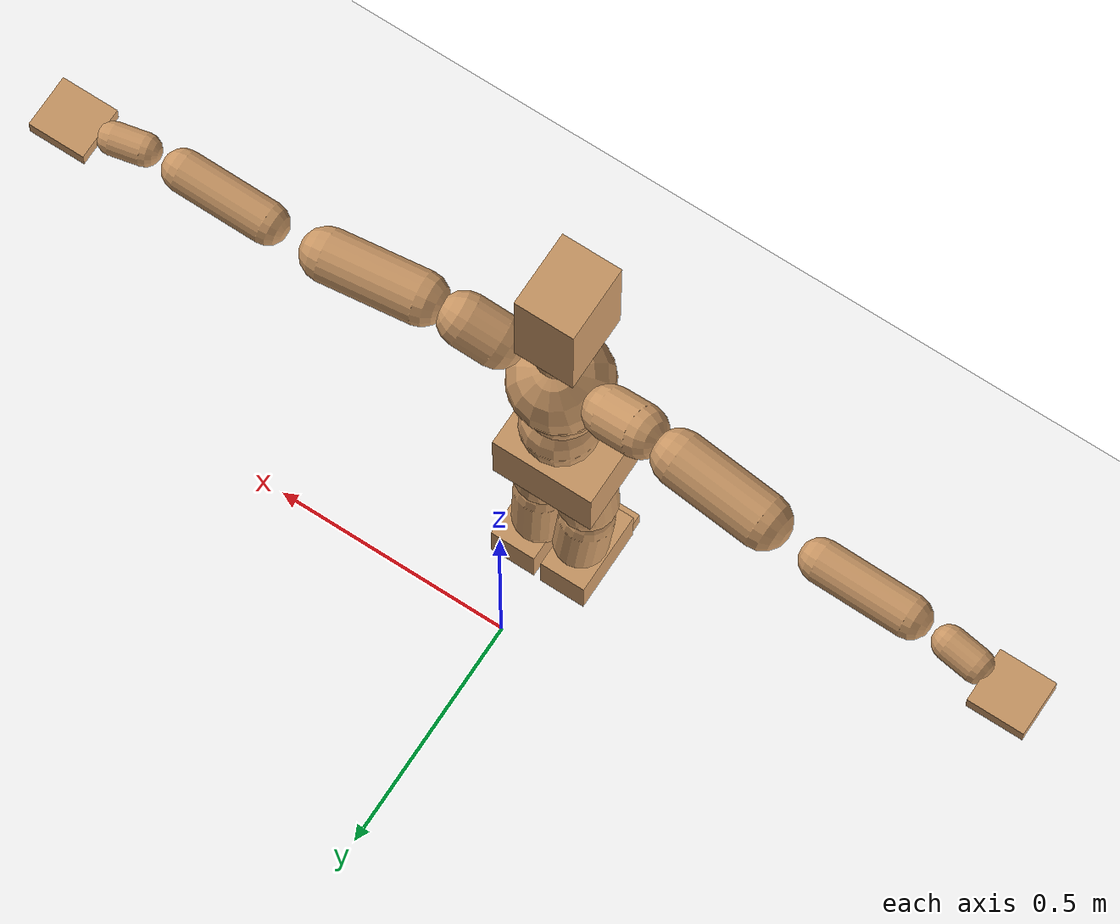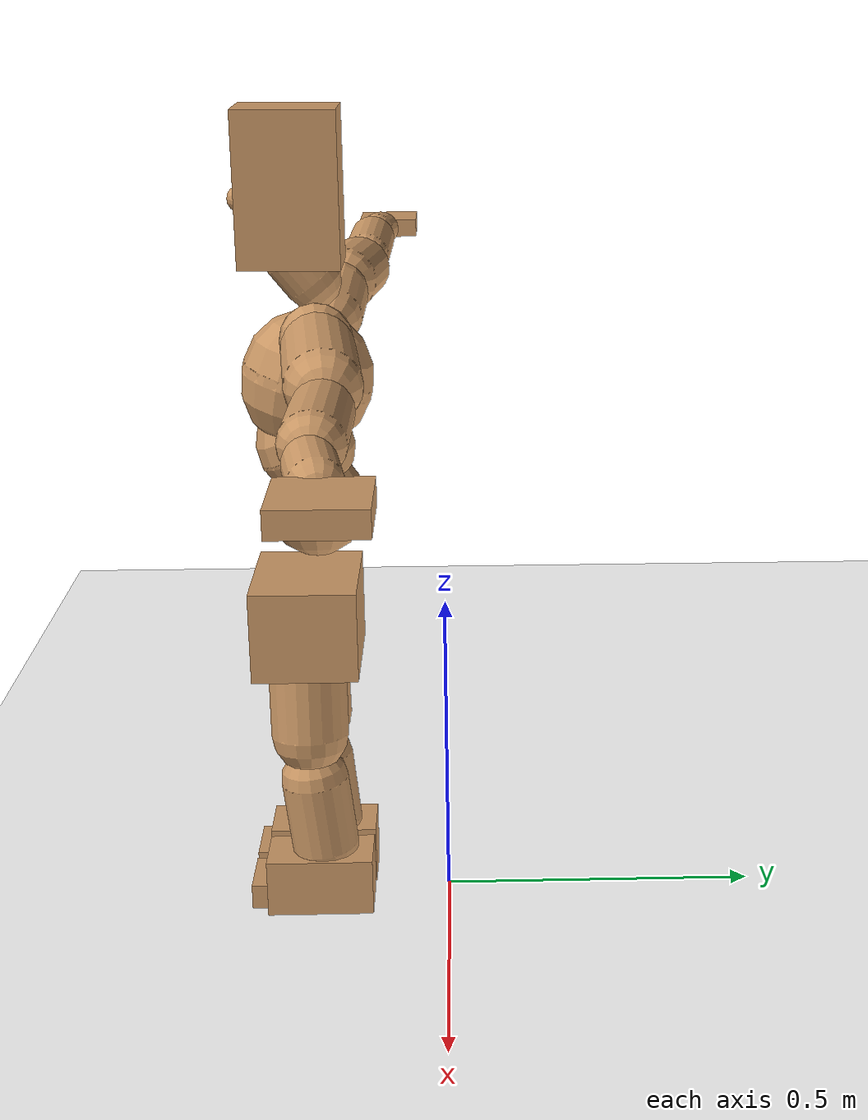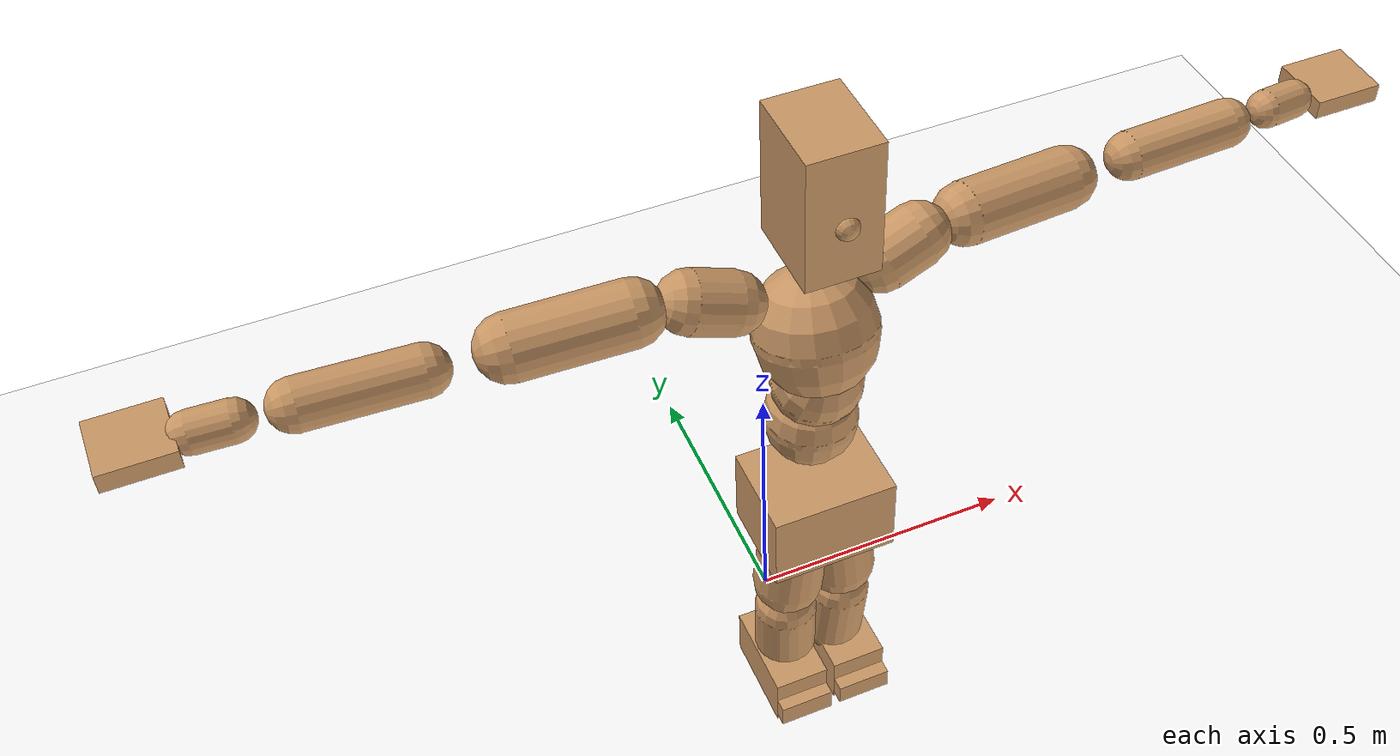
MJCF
<mujoco model="humanoid">
  <option integrator="implicitfast" />

  <visual>
    <global offwidth="1280" offheight="960" />
    <headlight active="1" ambient="0.34 0.34 0.34" diffuse="0.5 0.5 0.5" />
  </visual>

  <default>
    <joint damping="2" stiffness="2" armature="0.01" limited="true" solimplimit="0 .99 .01" />
    <geom condim="1" friction="0.7 0.005 0.0001" solimp=".99 .99 .003" solref="0.015 1" margin="0.001" rgba="0.8 0.6 .4 1" />
    <default class="smplcontact">
      <geom condim="3" friction="1. 0.005 0.0001" solref="0.015 1" solimp="0.98 0.98 0.001" priority="1" />
    </default>
    <default class="stiff_medium">
      <joint stiffness="10" />
    </default>
    <default class="stiff_medium_higher">
      <joint stiffness="50" />
    </default>
    <default class="stiff_high">
      <joint stiffness="100" />
    </default>
  </default>

  <asset>
    <texture type="skybox" builtin="gradient" rgb1="0.99 0.99 0.99" rgb2="0.608 0.828 0.892" width="100" />
    <texture builtin="flat" height="1278" mark="cross" markrgb="1 1 1" name="texgeom" random="0.01" rgb1="0.8 0.6 0.4" rgb2="0.8 0.6 0.4" type="cube" width="127" />
    <texture name="texplane" type="2d" builtin="checker" markrgb="1 1 1" rgb1="0.756 0.772 0.76" rgb2="0.6 0.6 0.6" width="100" height="100" />
    <material name="MatPlane" reflectance="0.5" texture="texplane" texrepeat="1 1" texuniform="true" />
    <material name="geom" texture="texgeom" texuniform="true" />
  </asset>

  <worldbody>
    <light name="tracking_light" pos="0 0 7" dir="0 0 -1" directional="true" cutoff="100" exponent="1" diffuse="1 1 1" specular="0.1 0.1 0.1" mode="trackcom" />
    <camera name="back" pos="0 3 2.4" xyaxes="-1 0 0 0 -1 2" mode="trackcom" />
    <camera name="side" pos="-3 0 2.4" xyaxes="0 -1 0 1 0 2" mode="trackcom" />
    <camera name="front_side" pos="-2.8 -2.8 0.8" xyaxes="0.5 -0.5 0 0.1 0.1 1" mode="trackcom" />
    <geom condim="3" name="floor" pos="0 0 0" rgba="1 1 1 1" size="100 100 .2" type="plane" material="MatPlane" />
    <body name="Pelvis" pos="-0.0018 -0.2233 0.49225" euler="90 0 0">
      <site name="Pelvis" size="0.01" />
      <freejoint name="Pelvis" />
      <geom type="box" pos="-0.0000 -0.0121 -0.0055" size="0.1069 0.0722 0.083" quat="1.0000 0.0000 0.0000 0.0000" density="3165.830099" name="Pelvis" />
      <body name="L_Hip" pos="0.03475 -0.0457 -0.0034">
        <joint name="L_Hip_x" type="hinge" pos="0 0 0" axis="1 0 0" stiffness="3.3281267346938783" range="-160.0 22.92" class="stiff_medium" damping="3.7390012674465325" armature="0.0018669335091027717"/>
        <joint name="L_Hip_y" type="hinge" pos="0 0 0" axis="0 1 0" stiffness="3.37791" range="-70.0 70.0" class="stiff_medium" damping="4.005630916019097" armature="0.004750001934737156"/>
        <joint name="L_Hip_z" type="hinge" pos="0 0 0" axis="0 0 1" stiffness="3.3736477551020405" range="-28.65 90.0" class="stiff_medium" damping="2.5063841398267126" armature="0.0018620679787552047"/>
        <geom type="capsule" density="2040.816327" fromto="0.00345 -0.0375 -0.00045 0.0137 -0.1501 -0.0018" size="0.0615" name="L_Hip" />
        <body name="L_Knee" pos="0.01715 -0.1876 -0.00225">
          <joint name="L_Knee_x" type="hinge" pos="0 0 0" axis="1 0 0" range="-5.16 171.89" damping="2.234113816312467" armature="0.002158215061835119" stiffness="0.7227130408163265"/>
          <joint name="L_Knee_y" type="hinge" pos="0 0 0" axis="0 1 0" range="-4.58 6.88" damping="3.4591258985845013" armature="0.005422024016158549" stiffness="0.6896382205818496"/>
          <joint name="L_Knee_z" type="hinge" pos="0 0 0" axis="0 0 1" range="-6.88 4.58" damping="2.2483389527020092" armature="0.0021311895651193293" stiffness="0.7412274770408163"/>
          <geom type="capsule" density="1234.567901" fromto="-0.00135 -0.0398 -0.00435 -0.00545 -0.1592 -0.0175" size="0.0541" name="L_Knee" />
          <body name="L_Ankle" pos="-0.0068 -0.199 -0.02185">
            <joint name="L_Ankle_x" type="hinge" pos="0 0 0" axis="1 0 0" range="-45.84 45.84" class="stiff_medium" damping="3.02004322854506" armature="0.005067033945711594" stiffness="5.0"/>
            <joint name="L_Ankle_y" type="hinge" pos="0 0 0" axis="0 1 0" range="-74.48 22.92" class="stiff_medium" damping="1.5371232923821347" armature="0.005250551146630429" stiffness="5.0"/>
            <joint name="L_Ankle_z" type="hinge" pos="0 0 0" axis="0 0 1" range="-4.58 4.58" class="stiff_medium" damping="3.407863702828065" armature="0.006451963898362782" stiffness="5.0"/>
            <geom type="box" pos="0.01165 -0.01195 0.0121" size="0.0483 0.0464 0.085" quat="1.0000 0.0000 0.0000 0.0000" density="449.071558" name="L_Ankle" class="smplcontact" />
            <body name="L_Toe" pos="0.0132 -0.0279 0.05965">
              <joint name="L_Toe_x" type="hinge" pos="0 0 0" axis="1 0 0" range="-91.67 22.92" armature="0.007148590664291528" damping="1.195708213929429" stiffness="1.0"/>
              <joint name="L_Toe_y" type="hinge" pos="0 0 0" axis="0 1 0" range="-4.58 4.58" armature="0.007990951927082678" damping="1.2641955487251706" stiffness="1.0"/>
              <joint name="L_Toe_z" type="hinge" pos="0 0 0" axis="0 0 1" range="-4.58 4.58" armature="0.009694161060559632" damping="1.392419553192186" stiffness="1.0"/>
              <geom type="box" pos="-0.0015 0.00275 0.0124" size="0.0478 0.02 0.0496" quat="1.0000 0.0000 0.0000 0.0000" density="423.206892" name="L_Toe" class="smplcontact" />
            </body>
          </body>
        </body>
      </body>
      <body name="R_Hip" pos="-0.03385 -0.04525 -0.00215">
        <joint name="R_Hip_x" type="hinge" pos="0 0 0" axis="1 0 0" stiffness="3.3281267346938783" range="-160.0 22.92" class="stiff_medium" damping="3.7390012674465325" armature="0.0018669335091027717"/>
        <joint name="R_Hip_y" type="hinge" pos="0 0 0" axis="0 1 0" stiffness="3.37791" range="-70.0 70.0" class="stiff_medium" damping="4.005630916019097" armature="0.004750001934737156"/>
        <joint name="R_Hip_z" type="hinge" pos="0 0 0" axis="0 0 1" stiffness="3.3736477551020405" range="-90.0 28.65" class="stiff_medium" damping="2.5063841398267126" armature="0.0018620679787552047"/>
        <geom type="capsule" density="2040.816327" fromto="-0.00385 -0.03825 -0.0009 -0.0153 -0.15305 -0.00355" size="0.0606" name="R_Hip" />
        <body name="R_Knee" pos="-0.01915 -0.1913 -0.00445">
          <joint name="R_Knee_x" type="hinge" pos="0 0 0" axis="1 0 0" range="-5.16 171.89" damping="2.234113816312467" armature="0.002158215061835119" stiffness="0.7227130408163265"/>
          <joint name="R_Knee_y" type="hinge" pos="0 0 0" axis="0 1 0" range="-6.88 4.58" damping="3.4591258985845013" armature="0.005422024016158549" stiffness="0.6896382205818496"/>
          <joint name="R_Knee_z" type="hinge" pos="0 0 0" axis="0 0 1" range="-4.58 6.88" damping="2.2483389527020092" armature="0.0021311895651193293" stiffness="0.7412274770408163"/>
          <geom type="capsule" density="1234.567901" fromto="0.0016 -0.03985 -0.00425 0.0063 -0.15935 -0.0169" size="0.0541" name="R_Knee" />
          <body name="R_Ankle" pos="0.0079 -0.1992 -0.02115">
            <joint name="R_Ankle_x" type="hinge" pos="0 0 0" axis="1 0 0" range="-45.84 45.84" class="stiff_medium" damping="3.02004322854506" armature="0.005067033945711594" stiffness="5.0"/>
            <joint name="R_Ankle_y" type="hinge" pos="0 0 0" axis="0 1 0" range="-22.92 74.48" class="stiff_medium" damping="1.5371232923821347" armature="0.005250551146630429" stiffness="5.0"/>
            <joint name="R_Ankle_z" type="hinge" pos="0 0 0" axis="0 0 1" range="-4.58 4.58" class="stiff_medium" damping="3.407863702828065" armature="0.006451963898362782" stiffness="5.0"/>
            <geom type="box" pos="-0.0106 -0.0087 0.0128" size="0.0483 0.0478 0.0865" quat="1.0000 0.0000 0.0000 0.0000" density="434.700981" name="R_Ankle" class="smplcontact" />
            <body name="R_Toe" pos="-0.0127 -0.02405 0.06165">
              <joint name="R_Toe_x" type="hinge" pos="0 0 0" axis="1 0 0" range="-91.67 22.92" armature="0.007148590664291528" damping="1.195708213929429" stiffness="1.0"/>
              <joint name="R_Toe_y" type="hinge" pos="0 0 0" axis="0 1 0" range="-4.58 4.58" armature="0.007990951927082678" damping="1.2641955487251706" stiffness="1.0"/>
              <joint name="R_Toe_z" type="hinge" pos="0 0 0" axis="0 0 1" range="-4.58 4.58" armature="0.009694161060559632" damping="1.392419553192186" stiffness="1.0"/>
              <geom type="box" pos="0.0021 0.00225 0.01135" size="0.0479 0.0216 0.0493" quat="1.0000 0.0000 0.0000 0.0000" density="407.384095" name="R_Toe" class="smplcontact" />
            </body>
          </body>
        </body>
      </body>
      <body name="Torso" pos="-0.0025 0.109 -0.0267">
        <joint name="Torso_x" type="hinge" pos="0 0 0" axis="1 0 0" range="-25.78 57.3" class="stiff_medium" damping="16.249002662379564" armature="0.011000822944888132" stiffness="10.667084285714289"/>
        <joint name="Torso_y" type="hinge" pos="0 0 0" axis="0 1 0" range="-57.3 57.3" class="stiff_high" damping="25.827862257678852" armature="0.015782642166796146" stiffness="105.6664755102041"/>
        <joint name="Torso_z" type="hinge" pos="0 0 0" axis="0 0 1" range="-34.38 34.38" class="stiff_high" damping="22.959426849090946" armature="0.012628565201764919" stiffness="104.35375531914897"/>
        <geom type="capsule" density="2040.816327" fromto="0.0025 0.0608 0.0005 0.003 0.0743 0.0006" size="0.0769" name="Torso" />
        <body name="Spine" pos="0.0055 0.1352 0.0011">
          <joint name="Spine_x" type="hinge" pos="0 0 0" axis="1 0 0" stiffness="10.801640204081632" range="-25.78 57.3" class="stiff_medium" damping="16.52949868968123" armature="0.011242092117287062"/>
          <joint name="Spine_y" type="hinge" pos="0 0 0" axis="0 1 0" stiffness="10.993194042553192" range="-57.3 57.3" class="stiff_high" damping="10.550939846165113" armature="0.015822621024438047"/>
          <joint name="Spine_z" type="hinge" pos="0 0 0" axis="0 0 1" stiffness="21.950184081632656" range="-34.38 34.38" class="stiff_high" damping="14.755254913518769" armature="0.01377598846559587"/>
          <geom type="capsule" density="2040.816327" fromto="0.0007 0.0238 0.0114 0.0008 0.0291 0.014" size="0.0755" name="Spine" />
          <body name="Chest" pos="0.0015 0.0529 0.0254">
            <joint name="Chest_x" type="hinge" pos="0 0 0" axis="1 0 0" stiffness="11.160686250000001" range="-25.78 57.3" class="stiff_medium" damping="16.913025635620166" armature="0.01139119264985042"/>
            <joint name="Chest_y" type="hinge" pos="0 0 0" axis="0 1 0" stiffness="12.279827826086954" range="-57.3 57.3" class="stiff_high" damping="11.153527766970866" armature="0.015828955346832537"/>
            <joint name="Chest_z" type="hinge" pos="0 0 0" axis="0 0 1" stiffness="22.066057083333334" range="-34.38 34.38" class="stiff_high" damping="15.064016907343918" armature="0.014283161773945492"/>
            <geom type="capsule" density="2040.816327" fromto="-0.0009 0.0682 -0.0173 -0.001 0.0833 -0.0212" size="0.1002" name="Chest" />
            <body name="Neck" pos="-0.0028 0.2139 -0.0429">
              <joint name="Neck_x" type="hinge" pos="0 0 0" axis="1 0 0" range="-28.65 57.3" class="stiff_medium_higher" damping="10.0" armature="0.010000000000000002" stiffness="50.0"/>
              <joint name="Neck_y" type="hinge" pos="0 0 0" axis="0 1 0" range="-40.11 40.11" class="stiff_medium_higher" damping="10.0" armature="0.01" stiffness="50.0"/>
              <joint name="Neck_z" type="hinge" pos="0 0 0" axis="0 0 1" range="-40.11 40.11" class="stiff_medium_higher" damping="9.999999999999998" armature="0.009999999999999998" stiffness="50.0"/>
              <geom type="capsule" density="1000" fromto="0.001 0.013 0.0103 0.0041 0.052 0.0411" size="0.0436" name="Neck" />
              <body name="Head" pos="0.0052 0.065 0.0513">
                <joint name="Head_x" type="hinge" pos="0 0 0" axis="1 0 0" range="-28.65 57.3" class="stiff_medium_higher" damping="2.000000000000001" armature="0.010000000000000009" stiffness="50.0"/>
                <joint name="Head_y" type="hinge" pos="0 0 0" axis="0 1 0" range="-40.11 40.11" class="stiff_medium_higher" damping="2.0" armature="0.010000000000000002" stiffness="50.0"/>
                <joint name="Head_z" type="hinge" pos="0 0 0" axis="0 0 1" range="-40.11 40.11" class="stiff_medium_higher" damping="2.0000000000000004" armature="0.010000000000000007" stiffness="50.0"/>
                <geom type="box" pos="-0.0042 0.0876 -0.0116" size="0.0606 0.1154 0.076" quat="1.0000 0.0000 0.0000 0.0000" density="1018.069894" name="Head" />
                <geom type="capsule" name="nose" size="0.02 0.01" pos="0 0.07 0.05" quat="1 0 0 0" mass="0" contype="0" conaffinity="0" />
              </body>
            </body>
            <body name="L_Thorax" pos="0.09456 0.14604 -0.04092">
              <joint name="L_Thorax_x" type="hinge" pos="0 0 0" axis="1 0 0" range="-10.89 4.58" class="stiff_medium_higher" damping="27.342828037145544" armature="0.013883161405287541" stiffness="67.31448112244898"/>
              <joint name="L_Thorax_y" type="hinge" pos="0 0 0" axis="0 1 0" range="-28.65 17.19" class="stiff_medium_higher" damping="29.39539222803986" armature="0.015973211475722778" stiffness="67.620175"/>
              <joint name="L_Thorax_z" type="hinge" pos="0 0 0" axis="0 0 1" range="-31.51 40.11" class="stiff_medium_higher" damping="29.396409527404238" armature="0.015975115138279122" stiffness="67.61679693877551"/>
              <geom type="capsule" density="1000" fromto="0.02184 0.00732 -0.00216 0.08736 0.02928 -0.00852" size="0.0521" name="L_Thorax" />
              <body name="L_Shoulder" pos="0.1092 0.0366 -0.01068">
                <joint name="L_Shoulder_x" type="hinge" pos="0 0 0" axis="1 0 0" range="-97.4 97.4" class="stiff_medium" damping="7.934224871342847" armature="0.013032307273704663" stiffness="13.417919999999999"/>
                <joint name="L_Shoulder_y" type="hinge" pos="0 0 0" axis="0 1 0" range="-108.86 80.21" class="stiff_medium" damping="8.787023272078152" armature="0.015885669306109254" stiffness="13.501298367346937"/>
                <joint name="L_Shoulder_z" type="hinge" pos="0 0 0" axis="0 0 1" range="-97.4 85.94" class="stiff_medium" damping="8.786069504764413" armature="0.015888008764521212" stiffness="13.496380000000002"/>
                <geom type="capsule" density="1000" fromto="0.06228 -0.00312 -0.0066 0.24924 -0.01224 -0.0264" size="0.0517" name="L_Shoulder" />
                <body name="L_Elbow" pos="0.31152 -0.01536 -0.033">
                  <joint name="L_Elbow_x" type="hinge" pos="0 0 0" axis="1 0 0" range="-17.19 4.58" damping="6.232456205291436" armature="0.01173152521758845" stiffness="2.6488293469387756"/>
                  <joint name="L_Elbow_y" type="hinge" pos="0 0 0" axis="0 1 0" range="-180.0 17.19" damping="7.156106367972157" armature="0.015461775606096708" stiffness="2.649623673469388"/>
                  <joint name="L_Elbow_z" type="hinge" pos="0 0 0" axis="0 0 1" range="-100.84 4.58" damping="7.157115854883422" armature="0.015474031127394204" stiffness="2.648272163265306"/>
                  <geom type="capsule" density="1000" fromto="0.05976 0.00216 -0.00024 0.23928 0.00864 -0.00108" size="0.0405" name="L_Elbow" />
                  <body name="L_Wrist" pos="0.29904 0.0108 -0.00144">
                    <joint name="L_Wrist_x" type="hinge" pos="0 0 0" axis="1 0 0" range="-180.0 22.92" armature="0.011470487256353419" damping="2.3885555565203327" stiffness="2.4869029183673472"/>
                    <joint name="L_Wrist_y" type="hinge" pos="0 0 0" axis="0 1 0" range="-17.19 17.19" armature="0.014137841032973879" damping="2.6585613747278862" stiffness="2.4996562653061227"/>
                    <joint name="L_Wrist_z" type="hinge" pos="0 0 0" axis="0 0 1" range="-22.92 22.92" armature="0.014283798741946246" damping="2.6694984653462823" stiffness="2.4945122040816328"/>
                    <geom type="capsule" density="1000" fromto="0.02016 -0.00192 -0.0036 0.08064 -0.0078 -0.0144" size="0.0318" name="L_Wrist" class="smplcontact" />
                    <body name="L_Hand" pos="0.1008 -0.00984 -0.01788">
                      <joint name="L_Hand_x" type="hinge" pos="0 0 0" axis="1 0 0" range="-17.19 17.19" armature="0.010191691106290342" damping="2.2117892600831945" stiffness="2.4000000000000004"/>
                      <joint name="L_Hand_y" type="hinge" pos="0 0 0" axis="0 1 0" range="-51.57 51.57" armature="0.01231823946428861" damping="2.431615706245239" stiffness="2.4000000000000004"/>
                      <joint name="L_Hand_z" type="hinge" pos="0 0 0" axis="0 0 1" range="-91.67 91.67" armature="0.012885099984316237" damping="2.486935462064063" stiffness="2.4000000000000004"/>
                      <geom type="box" pos="0.05916 0.0012 -0.00696" size="0.0585 0.0158 0.0538" quat="1.0000 0.0000 0.0000 0.0000" density="400.552564" name="L_Hand" class="smplcontact" />
                    </body>
                  </body>
                </body>
              </body>
            </body>
            <body name="R_Thorax" pos="-0.09816 0.14256 -0.04632">
              <joint name="R_Thorax_x" type="hinge" pos="0 0 0" axis="1 0 0" range="-10.89 4.58" class="stiff_medium_higher" damping="27.342828037145544" armature="0.013883161405287541" stiffness="67.31448112244898"/>
              <joint name="R_Thorax_y" type="hinge" pos="0 0 0" axis="0 1 0" range="-17.19 28.65" class="stiff_medium_higher" damping="29.39539222803986" armature="0.015973211475722778" stiffness="67.620175"/>
              <joint name="R_Thorax_z" type="hinge" pos="0 0 0" axis="0 0 1" range="-40.11 31.51" class="stiff_medium_higher" damping="29.396409527404238" armature="0.015975115138279122" stiffness="67.61679693877551"/>
              <geom type="capsule" density="1000" fromto="-0.02304 0.0078 -0.00216 -0.09216 0.0312 -0.00876" size="0.0511" name="R_Thorax" />
              <body name="R_Shoulder" pos="-0.1152 0.03912 -0.01092">
                <joint name="R_Shoulder_x" type="hinge" pos="0 0 0" axis="1 0 0" range="-97.4 97.4" class="stiff_medium" damping="7.934224871342847" armature="0.013032307273704663" stiffness="13.417919999999999"/>
                <joint name="R_Shoulder_y" type="hinge" pos="0 0 0" axis="0 1 0" range="-80.21 108.86" class="stiff_medium" damping="8.787023272078152" armature="0.015885669306109254" stiffness="13.501298367346937"/>
                <joint name="R_Shoulder_z" type="hinge" pos="0 0 0" axis="0 0 1" range="-85.94 97.4" class="stiff_medium" damping="8.786069504764413" armature="0.015888008764521212" stiffness="13.496380000000002"/>
                <geom type="capsule" density="1000" fromto="-0.06084 -0.00324 -0.00516 -0.2436 -0.01284 -0.02052" size="0.0531" name="R_Shoulder" />
                <body name="R_Elbow" pos="-0.30444 -0.01596 -0.02568">
                  <joint name="R_Elbow_x" type="hinge" pos="0 0 0" axis="1 0 0" range="-17.19 4.58" damping="6.232456205291436" armature="0.01173152521758845" stiffness="2.6488293469387756"/>
                  <joint name="R_Elbow_y" type="hinge" pos="0 0 0" axis="0 1 0" range="-17.19 180.0" damping="7.156106367972157" armature="0.015461775606096708" stiffness="2.649623673469388"/>
                  <joint name="R_Elbow_z" type="hinge" pos="0 0 0" axis="0 0 1" range="-4.58 100.84" damping="7.157115854883422" armature="0.015474031127394204" stiffness="2.648272163265306"/>
                  <geom type="capsule" density="1000" fromto="-0.06132 0.00192 -0.00132 -0.24504 0.00744 -0.00528" size="0.0408" name="R_Elbow" />
                  <body name="R_Wrist" pos="-0.30636 0.00936 -0.00672">
                    <joint name="R_Wrist_x" type="hinge" pos="0 0 0" axis="1 0 0" range="-180.0 22.92" armature="0.011470487256353419" damping="2.3885555565203327" stiffness="2.4869029183673472"/>
                    <joint name="R_Wrist_y" type="hinge" pos="0 0 0" axis="0 1 0" range="-17.19 17.19" armature="0.014137841032973879" damping="2.6585613747278862" stiffness="2.4996562653061227"/>
                    <joint name="R_Wrist_z" type="hinge" pos="0 0 0" axis="0 0 1" range="-22.92 22.92" armature="0.014283798741946246" damping="2.6694984653462823" stiffness="2.4945122040816328"/>
                    <geom type="capsule" density="1000" fromto="-0.02028 -0.00144 -0.00252 -0.08124 -0.00588 -0.00996" size="0.0326" name="R_Wrist" class="smplcontact" />
                    <body name="R_Hand" pos="-0.10152 -0.00732 -0.01236">
                      <joint name="R_Hand_x" type="hinge" pos="0 0 0" axis="1 0 0" range="-17.19 17.19" armature="0.010191691106290342" damping="2.2117892600831945" stiffness="2.4000000000000004"/>
                      <joint name="R_Hand_y" type="hinge" pos="0 0 0" axis="0 1 0" range="-51.57 51.57" armature="0.01231823946428861" damping="2.431615706245239" stiffness="2.4000000000000004"/>
                      <joint name="R_Hand_z" type="hinge" pos="0 0 0" axis="0 0 1" range="-91.67 91.67" armature="0.012885099984316237" damping="2.486935462064063" stiffness="2.4000000000000004"/>
                      <geom type="box" pos="-0.05544 -0.00108 -0.00948" size="0.0569 0.0164 0.0546" quat="1.0000 0.0000 0.0000 0.0000" density="403.679611" name="R_Hand" class="smplcontact" />
                    </body>
                  </body>
                </body>
              </body>
            </body>
          </body>
        </body>
      </body>
    </body>
  </worldbody>
  <actuator>
    <general name="L_Hip_x" joint="L_Hip_x" biastype="affine" gainprm="95.62708680036044" biasprm="-71.66280919852072 -59.9062812244898 -0.49853350232620436" ctrllimited="true" ctrlrange="-1 1" forcerange="-119.8125624489796 119.8125624489796" />
    <general name="L_Hip_y" joint="L_Hip_y" biastype="affine" gainprm="74.28412068341248" biasprm="0.0 -60.80238 -0.8011261832038193" ctrllimited="true" ctrlrange="-1 1" forcerange="-121.60476 121.60476" />
    <general name="L_Hip_z" joint="L_Hip_z" biastype="affine" gainprm="62.8763546966517" biasprm="32.51128833240271 -60.72565959183673 -0.5012768279653426" ctrllimited="true" ctrlrange="-1 1" forcerange="-121.45131918367346 121.45131918367346" />
    <general name="L_Knee_x" joint="L_Knee_x" biastype="affine" gainprm="100.49667747567948" biasprm="94.63886492809961 -65.04417367346939 -0.5585284540781168" ctrllimited="true" ctrlrange="-1 1" forcerange="-130.08834734693878 130.08834734693878" />
    <general name="L_Knee_y" joint="L_Knee_y" biastype="affine" gainprm="6.207201182643047" biasprm="1.2457733612634387 -62.06743985236647 -0.8647814746461253" ctrllimited="true" ctrlrange="-1 1" forcerange="-124.13487970473294 124.13487970473294" />
    <general name="L_Knee_z" joint="L_Knee_z" biastype="affine" gainprm="6.671538692002082" biasprm="-1.3389650079934372 -66.71047293367346 -0.5620847381755023" ctrllimited="true" ctrlrange="-1 1" forcerange="-133.42094586734692 133.42094586734692" />
    <general name="L_Ankle_x" joint="L_Ankle_x" biastype="affine" gainprm="36.002651810139035" biasprm="0.0 -45.0 -1.0066810761816867" ctrllimited="true" ctrlrange="-1 1" forcerange="-90.0 90.0" />
    <general name="L_Ankle_y" joint="L_Ankle_y" biastype="affine" gainprm="38.24889055745574" biasprm="-20.24756465238622 -45.0 -1.0247488615880898" ctrllimited="true" ctrlrange="-1 1" forcerange="-90.0 90.0" />
    <general name="L_Ankle_z" joint="L_Ankle_z" biastype="affine" gainprm="3.5971235883603128" biasprm="0.0 -45.0 -1.135954567609355" ctrllimited="true" ctrlrange="-1 1" forcerange="-90.0 90.0" />
    <general name="L_Toe_x" joint="L_Toe_x" biastype="affine" gainprm="35.99951021748544" biasprm="-21.598449493429825 -36.0 -0.47828328557177163" ctrllimited="true" ctrlrange="-1 1" forcerange="-72.0 72.0" />
    <general name="L_Toe_y" joint="L_Toe_y" biastype="affine" gainprm="2.8776988706882505" biasprm="0.0 -36.0 -0.5056782194900683" ctrllimited="true" ctrlrange="-1 1" forcerange="-72.0 72.0" />
    <general name="L_Toe_z" joint="L_Toe_z" biastype="affine" gainprm="2.8776988706882505" biasprm="0.0 -36.0 -0.5569678212768744" ctrllimited="true" ctrlrange="-1 1" forcerange="-72.0 72.0" />
    <general name="R_Hip_x" joint="R_Hip_x" biastype="affine" gainprm="95.62708680036044" biasprm="-71.66280919852072 -59.9062812244898 -0.49853350232620436" ctrllimited="true" ctrlrange="-1 1" forcerange="-119.8125624489796 119.8125624489796" />
    <general name="R_Hip_y" joint="R_Hip_y" biastype="affine" gainprm="74.28412068341248" biasprm="0.0 -60.80238 -0.8011261832038193" ctrllimited="true" ctrlrange="-1 1" forcerange="-121.60476 121.60476" />
    <general name="R_Hip_z" joint="R_Hip_z" biastype="affine" gainprm="62.8763546966517" biasprm="-32.51128833240271 -60.72565959183673 -0.5012768279653426" ctrllimited="true" ctrlrange="-1 1" forcerange="-121.45131918367346 121.45131918367346" />
    <general name="R_Knee_x" joint="R_Knee_x" biastype="affine" gainprm="100.49667747567948" biasprm="94.63886492809961 -65.04417367346939 -0.5585284540781168" ctrllimited="true" ctrlrange="-1 1" forcerange="-130.08834734693878 130.08834734693878" />
    <general name="R_Knee_y" joint="R_Knee_y" biastype="affine" gainprm="6.207201182643047" biasprm="-1.2457733612634387 -62.06743985236647 -0.8647814746461253" ctrllimited="true" ctrlrange="-1 1" forcerange="-124.13487970473294 124.13487970473294" />
    <general name="R_Knee_z" joint="R_Knee_z" biastype="affine" gainprm="6.671538692002082" biasprm="1.3389650079934372 -66.71047293367346 -0.5620847381755023" ctrllimited="true" ctrlrange="-1 1" forcerange="-133.42094586734692 133.42094586734692" />
    <general name="R_Ankle_x" joint="R_Ankle_x" biastype="affine" gainprm="36.002651810139035" biasprm="0.0 -45.0 -1.0066810761816867" ctrllimited="true" ctrlrange="-1 1" forcerange="-90.0 90.0" />
    <general name="R_Ankle_y" joint="R_Ankle_y" biastype="affine" gainprm="38.24889055745574" biasprm="20.24756465238622 -45.0 -1.0247488615880898" ctrllimited="true" ctrlrange="-1 1" forcerange="-90.0 90.0" />
    <general name="R_Ankle_z" joint="R_Ankle_z" biastype="affine" gainprm="3.5971235883603128" biasprm="0.0 -45.0 -1.135954567609355" ctrllimited="true" ctrlrange="-1 1" forcerange="-90.0 90.0" />
    <general name="R_Toe_x" joint="R_Toe_x" biastype="affine" gainprm="35.99951021748544" biasprm="-21.598449493429825 -36.0 -0.47828328557177163" ctrllimited="true" ctrlrange="-1 1" forcerange="-72.0 72.0" />
    <general name="R_Toe_y" joint="R_Toe_y" biastype="affine" gainprm="2.8776988706882505" biasprm="0.0 -36.0 -0.5056782194900683" ctrllimited="true" ctrlrange="-1 1" forcerange="-72.0 72.0" />
    <general name="R_Toe_z" joint="R_Toe_z" biastype="affine" gainprm="2.8776988706882505" biasprm="0.0 -36.0 -0.5569678212768744" ctrllimited="true" ctrlrange="-1 1" forcerange="-72.0 72.0" />
    <general name="Torso_x" joint="Torso_x" biastype="affine" gainprm="185.60976811664653" biasprm="70.4191127953382 -256.0100228571429 -4.33306737663455" ctrllimited="true" ctrlrange="-1 1" forcerange="-384.01503428571436 384.01503428571436" />
    <general name="Torso_y" joint="Torso_y" biastype="affine" gainprm="253.61822171989738" biasprm="0.0 -253.59954122448983 -5.165572451535771" ctrllimited="true" ctrlrange="-1 1" forcerange="-380.39931183673474 380.39931183673474" />
    <general name="Torso_z" joint="Torso_z" biastype="affine" gainprm="150.28047671343057" biasprm="0.0 -250.44901276595752 -4.591885369818189" ctrllimited="true" ctrlrange="-1 1" forcerange="-375.6735191489363 375.6735191489363" />
    <general name="Spine_x" joint="Spine_x" biastype="affine" gainprm="187.9510726510386" biasprm="71.3073881795948 -259.2393648979592 -4.407866317248328" ctrllimited="true" ctrlrange="-1 1" forcerange="-388.8590473469388 388.8590473469388" />
    <general name="Spine_y" joint="Spine_y" biastype="affine" gainprm="263.8560915968915" biasprm="0.0 -263.8366570212766 -5.275469923082556" ctrllimited="true" ctrlrange="-1 1" forcerange="-395.7549855319149 395.7549855319149" />
    <general name="Spine_z" joint="Spine_z" biastype="affine" gainprm="158.05296693189538" biasprm="0.0 -263.4022089795919 -4.918418304506257" ctrllimited="true" ctrlrange="-1 1" forcerange="-395.1033134693878 395.1033134693878" />
    <general name="Chest_x" joint="Chest_x" biastype="affine" gainprm="194.19855805015155" biasprm="73.67764263048598 -267.85647 -4.510140169498711" ctrllimited="true" ctrlrange="-1 1" forcerange="-401.78470500000003 401.78470500000003" />
    <general name="Chest_y" joint="Chest_y" biastype="affine" gainprm="294.73757700737673" biasprm="0.0 -294.71586782608694 -5.576763883485433" ctrllimited="true" ctrlrange="-1 1" forcerange="-442.0738017391304 442.0738017391304" />
    <general name="Chest_z" joint="Chest_z" biastype="affine" gainprm="158.88731399878043" biasprm="0.0 -264.792685 -5.021338969114639" ctrllimited="true" ctrlrange="-1 1" forcerange="-397.1890275 397.1890275" />
    <general name="Neck_x" joint="Neck_x" biastype="affine" gainprm="27.00198885760427" biasprm="9.000662952534757 -36.0 -0.8" ctrllimited="true" ctrlrange="-1 1" forcerange="-72.0 72.0" />
    <general name="Neck_y" joint="Neck_y" biastype="affine" gainprm="25.20185626709732" biasprm="0.0 -36.0 -0.8" ctrllimited="true" ctrlrange="-1 1" forcerange="-72.0 72.0" />
    <general name="Neck_z" joint="Neck_z" biastype="affine" gainprm="25.20185626709732" biasprm="0.0 -36.0 -0.7999999999999999" ctrllimited="true" ctrlrange="-1 1" forcerange="-72.0 72.0" />
    <general name="Head_x" joint="Head_x" biastype="affine" gainprm="18.001325905069514" biasprm="6.000441968356505 -24.0 -0.8000000000000004" ctrllimited="true" ctrlrange="-1 1" forcerange="-48.0 48.0" />
    <general name="Head_y" joint="Head_y" biastype="affine" gainprm="16.801237511398213" biasprm="0.0 -24.0 -0.8" ctrllimited="true" ctrlrange="-1 1" forcerange="-48.0 48.0" />
    <general name="Head_z" joint="Head_z" biastype="affine" gainprm="16.801237511398213" biasprm="0.0 -24.0 -0.8000000000000003" ctrllimited="true" ctrlrange="-1 1" forcerange="-48.0 48.0" />
    <general name="L_Thorax_x" joint="L_Thorax_x" biastype="affine" gainprm="21.810088599489532" biasprm="-8.896034845687073 -161.55475469387756 -2.1874262429716436" ctrllimited="true" ctrlrange="-1 1" forcerange="-323.1095093877551 323.1095093877551" />
    <general name="L_Thorax_y" joint="L_Thorax_y" biastype="affine" gainprm="64.92014975641781" biasprm="-16.230037439104454 -162.28842 -2.3516313782431886" ctrllimited="true" ctrlrange="-1 1" forcerange="-324.57684 324.57684" />
    <general name="L_Thorax_z" joint="L_Thorax_z" biastype="affine" gainprm="101.42558571489965" biasprm="12.179000797935451 -162.28031265306123 -2.351712762192339" ctrllimited="true" ctrlrange="-1 1" forcerange="-324.56062530612246 324.56062530612246" />
    <general name="L_Shoulder_x" joint="L_Shoulder_x" biastype="affine" gainprm="109.48705143225524" biasprm="0.0 -64.406016 -2.115793299024759" ctrllimited="true" ctrlrange="-1 1" forcerange="-128.812032 128.812032" />
    <general name="L_Shoulder_y" joint="L_Shoulder_y" biastype="affine" gainprm="106.92684888169526" biasprm="-16.202751470146342 -64.80623216326529 -2.3432062058875074" ctrllimited="true" ctrlrange="-1 1" forcerange="-129.61246432653058 129.61246432653058" />
    <general name="L_Shoulder_z" joint="L_Shoulder_z" biastype="affine" gainprm="103.64852686442701" biasprm="-6.478739597831004 -64.782624 -2.342951867937177" ctrllimited="true" ctrlrange="-1 1" forcerange="-129.565248 129.565248" />
    <general name="L_Elbow_x" joint="L_Elbow_x" biastype="affine" gainprm="18.115998712513008" biasprm="-10.493465492181402 -95.35785648979592 -0.9971929928466299" ctrllimited="true" ctrlrange="-1 1" forcerange="-190.71571297959184 190.71571297959184" />
    <general name="L_Elbow_y" joint="L_Elbow_y" biastype="affine" gainprm="164.14171059385552" biasprm="-135.52366703070956 -95.38645224489797 -1.1449770188755453" ctrllimited="true" ctrlrange="-1 1" forcerange="-190.77290448979593 190.77290448979593" />
    <general name="L_Elbow_z" joint="L_Elbow_z" biastype="affine" gainprm="87.70725119427513" biasprm="-80.08632138077144 -95.33779787755103 -1.1451385367813476" ctrllimited="true" ctrlrange="-1 1" forcerange="-190.67559575510205 190.67559575510205" />
    <general name="L_Wrist_x" joint="L_Wrist_x" biastype="affine" gainprm="26.423011144121567" biasprm="-20.454004487081686 -14.921417510204083 -0.9554222226081331" ctrllimited="true" ctrlrange="-1 1" forcerange="-29.842835020408167 29.842835020408167" />
    <general name="L_Wrist_y" joint="L_Wrist_y" biastype="affine" gainprm="4.499712708242443" biasprm="0.0 -14.997937591836736 -1.0634245498911545" ctrllimited="true" ctrlrange="-1 1" forcerange="-29.995875183673473 29.995875183673473" />
    <general name="L_Wrist_z" joint="L_Wrist_z" biastype="affine" gainprm="5.987270287979567" biasprm="0.0 -14.967073224489797 -1.0677993861385129" ctrllimited="true" ctrlrange="-1 1" forcerange="-29.934146448979593 29.934146448979593" />
    <general name="L_Hand_x" joint="L_Hand_x" biastype="affine" gainprm="4.320318217216685" biasprm="0.0 -14.400000000000002 -0.8847157040332778" ctrllimited="true" ctrlrange="-1 1" forcerange="-28.800000000000004 28.800000000000004" />
    <general name="L_Hand_y" joint="L_Hand_y" biastype="affine" gainprm="12.960954651650052" biasprm="0.0 -14.400000000000002 -0.9726462824980957" ctrllimited="true" ctrlrange="-1 1" forcerange="-28.800000000000004 28.800000000000004" />
    <general name="L_Hand_z" joint="L_Hand_z" biastype="affine" gainprm="23.03918388436611" biasprm="0.0 -14.400000000000002 -0.9947741848256252" ctrllimited="true" ctrlrange="-1 1" forcerange="-28.800000000000004 28.800000000000004" />
    <general name="R_Thorax_x" joint="R_Thorax_x" biastype="affine" gainprm="21.810088599489532" biasprm="-8.896034845687073 -161.55475469387756 -2.1874262429716436" ctrllimited="true" ctrlrange="-1 1" forcerange="-323.1095093877551 323.1095093877551" />
    <general name="R_Thorax_y" joint="R_Thorax_y" biastype="affine" gainprm="64.92014975641781" biasprm="16.230037439104443 -162.28842 -2.3516313782431886" ctrllimited="true" ctrlrange="-1 1" forcerange="-324.57684 324.57684" />
    <general name="R_Thorax_z" joint="R_Thorax_z" biastype="affine" gainprm="101.42558571489965" biasprm="-12.179000797935451 -162.28031265306123 -2.351712762192339" ctrllimited="true" ctrlrange="-1 1" forcerange="-324.56062530612246 324.56062530612246" />
    <general name="R_Shoulder_x" joint="R_Shoulder_x" biastype="affine" gainprm="109.48705143225524" biasprm="0.0 -64.406016 -2.115793299024759" ctrllimited="true" ctrlrange="-1 1" forcerange="-128.812032 128.812032" />
    <general name="R_Shoulder_y" joint="R_Shoulder_y" biastype="affine" gainprm="106.92684888169526" biasprm="16.202751470146342 -64.80623216326529 -2.3432062058875074" ctrllimited="true" ctrlrange="-1 1" forcerange="-129.61246432653058 129.61246432653058" />
    <general name="R_Shoulder_z" joint="R_Shoulder_z" biastype="affine" gainprm="103.64852686442701" biasprm="6.478739597830989 -64.782624 -2.342951867937177" ctrllimited="true" ctrlrange="-1 1" forcerange="-129.565248 129.565248" />
    <general name="R_Elbow_x" joint="R_Elbow_x" biastype="affine" gainprm="18.115998712513008" biasprm="-10.493465492181402 -95.35785648979592 -0.9971929928466299" ctrllimited="true" ctrlrange="-1 1" forcerange="-190.71571297959184 190.71571297959184" />
    <general name="R_Elbow_y" joint="R_Elbow_y" biastype="affine" gainprm="164.14171059385552" biasprm="135.52366703070956 -95.38645224489797 -1.1449770188755453" ctrllimited="true" ctrlrange="-1 1" forcerange="-190.77290448979593 190.77290448979593" />
    <general name="R_Elbow_z" joint="R_Elbow_z" biastype="affine" gainprm="87.70725119427513" biasprm="80.08632138077142 -95.33779787755103 -1.1451385367813476" ctrllimited="true" ctrlrange="-1 1" forcerange="-190.67559575510205 190.67559575510205" />
    <general name="R_Wrist_x" joint="R_Wrist_x" biastype="affine" gainprm="26.423011144121567" biasprm="-20.454004487081686 -14.921417510204083 -0.9554222226081331" ctrllimited="true" ctrlrange="-1 1" forcerange="-29.842835020408167 29.842835020408167" />
    <general name="R_Wrist_y" joint="R_Wrist_y" biastype="affine" gainprm="4.499712708242443" biasprm="0.0 -14.997937591836736 -1.0634245498911545" ctrllimited="true" ctrlrange="-1 1" forcerange="-29.995875183673473 29.995875183673473" />
    <general name="R_Wrist_z" joint="R_Wrist_z" biastype="affine" gainprm="5.987270287979567" biasprm="0.0 -14.967073224489797 -1.0677993861385129" ctrllimited="true" ctrlrange="-1 1" forcerange="-29.934146448979593 29.934146448979593" />
    <general name="R_Hand_x" joint="R_Hand_x" biastype="affine" gainprm="4.320318217216685" biasprm="0.0 -14.400000000000002 -0.8847157040332778" ctrllimited="true" ctrlrange="-1 1" forcerange="-28.800000000000004 28.800000000000004" />
    <general name="R_Hand_y" joint="R_Hand_y" biastype="affine" gainprm="12.960954651650052" biasprm="0.0 -14.400000000000002 -0.9726462824980957" ctrllimited="true" ctrlrange="-1 1" forcerange="-28.800000000000004 28.800000000000004" />
    <general name="R_Hand_z" joint="R_Hand_z" biastype="affine" gainprm="23.03918388436611" biasprm="0.0 -14.400000000000002 -0.9947741848256252" ctrllimited="true" ctrlrange="-1 1" forcerange="-28.800000000000004 28.800000000000004" />
  </actuator>
  <contact>
    <exclude body1="Torso" body2="Chest" />
    <exclude body1="Head" body2="Chest" />
    <exclude body1="R_Knee" body2="R_Toe" />
    <exclude body1="R_Knee" body2="L_Ankle" />
    <exclude body1="R_Knee" body2="L_Toe" />
    <exclude body1="L_Knee" body2="L_Toe" />
    <exclude body1="L_Knee" body2="R_Ankle" />
    <exclude body1="L_Knee" body2="R_Toe" />
    <exclude body1="L_Shoulder" body2="Chest" />
    <exclude body1="R_Shoulder" body2="Chest" />
  </contact>
  <sensor>
    <framelinvel name="sensor_Pelvis_framelinvel" objtype="xbody" objname="Pelvis" />
    <framelinvel name="sensor_L_Hip_framelinvel" objtype="xbody" objname="L_Hip" />
    <framelinvel name="sensor_L_Knee_framelinvel" objtype="xbody" objname="L_Knee" />
    <framelinvel name="sensor_L_Ankle_framelinvel" objtype="xbody" objname="L_Ankle" />
    <framelinvel name="sensor_L_Toe_framelinvel" objtype="xbody" objname="L_Toe" />
    <framelinvel name="sensor_R_Hip_framelinvel" objtype="xbody" objname="R_Hip" />
    <framelinvel name="sensor_R_Knee_framelinvel" objtype="xbody" objname="R_Knee" />
    <framelinvel name="sensor_R_Ankle_framelinvel" objtype="xbody" objname="R_Ankle" />
    <framelinvel name="sensor_R_Toe_framelinvel" objtype="xbody" objname="R_Toe" />
    <framelinvel name="sensor_Torso_framelinvel" objtype="xbody" objname="Torso" />
    <framelinvel name="sensor_Spine_framelinvel" objtype="xbody" objname="Spine" />
    <framelinvel name="sensor_Chest_framelinvel" objtype="xbody" objname="Chest" />
    <framelinvel name="sensor_Neck_framelinvel" objtype="xbody" objname="Neck" />
    <framelinvel name="sensor_Head_framelinvel" objtype="xbody" objname="Head" />
    <framelinvel name="sensor_L_Thorax_framelinvel" objtype="xbody" objname="L_Thorax" />
    <framelinvel name="sensor_L_Shoulder_framelinvel" objtype="xbody" objname="L_Shoulder" />
    <framelinvel name="sensor_L_Elbow_framelinvel" objtype="xbody" objname="L_Elbow" />
    <framelinvel name="sensor_L_Wrist_framelinvel" objtype="xbody" objname="L_Wrist" />
    <framelinvel name="sensor_L_Hand_framelinvel" objtype="xbody" objname="L_Hand" />
    <framelinvel name="sensor_R_Thorax_framelinvel" objtype="xbody" objname="R_Thorax" />
    <framelinvel name="sensor_R_Shoulder_framelinvel" objtype="xbody" objname="R_Shoulder" />
    <framelinvel name="sensor_R_Elbow_framelinvel" objtype="xbody" objname="R_Elbow" />
    <framelinvel name="sensor_R_Wrist_framelinvel" objtype="xbody" objname="R_Wrist" />
    <framelinvel name="sensor_R_Hand_framelinvel" objtype="xbody" objname="R_Hand" />
    <frameangvel name="sensor_Pelvis_frameangvel" objtype="xbody" objname="Pelvis" />
    <frameangvel name="sensor_L_Hip_frameangvel" objtype="xbody" objname="L_Hip" />
    <frameangvel name="sensor_L_Knee_frameangvel" objtype="xbody" objname="L_Knee" />
    <frameangvel name="sensor_L_Ankle_frameangvel" objtype="xbody" objname="L_Ankle" />
    <frameangvel name="sensor_L_Toe_frameangvel" objtype="xbody" objname="L_Toe" />
    <frameangvel name="sensor_R_Hip_frameangvel" objtype="xbody" objname="R_Hip" />
    <frameangvel name="sensor_R_Knee_frameangvel" objtype="xbody" objname="R_Knee" />
    <frameangvel name="sensor_R_Ankle_frameangvel" objtype="xbody" objname="R_Ankle" />
    <frameangvel name="sensor_R_Toe_frameangvel" objtype="xbody" objname="R_Toe" />
    <frameangvel name="sensor_Torso_frameangvel" objtype="xbody" objname="Torso" />
    <frameangvel name="sensor_Spine_frameangvel" objtype="xbody" objname="Spine" />
    <frameangvel name="sensor_Chest_frameangvel" objtype="xbody" objname="Chest" />
    <frameangvel name="sensor_Neck_frameangvel" objtype="xbody" objname="Neck" />
    <frameangvel name="sensor_Head_frameangvel" objtype="xbody" objname="Head" />
    <frameangvel name="sensor_L_Thorax_frameangvel" objtype="xbody" objname="L_Thorax" />
    <frameangvel name="sensor_L_Shoulder_frameangvel" objtype="xbody" objname="L_Shoulder" />
    <frameangvel name="sensor_L_Elbow_frameangvel" objtype="xbody" objname="L_Elbow" />
    <frameangvel name="sensor_L_Wrist_frameangvel" objtype="xbody" objname="L_Wrist" />
    <frameangvel name="sensor_L_Hand_frameangvel" objtype="xbody" objname="L_Hand" />
    <frameangvel name="sensor_R_Thorax_frameangvel" objtype="xbody" objname="R_Thorax" />
    <frameangvel name="sensor_R_Shoulder_frameangvel" objtype="xbody" objname="R_Shoulder" />
    <frameangvel name="sensor_R_Elbow_frameangvel" objtype="xbody" objname="R_Elbow" />
    <frameangvel name="sensor_R_Wrist_frameangvel" objtype="xbody" objname="R_Wrist" />
    <frameangvel name="sensor_R_Hand_frameangvel" objtype="xbody" objname="R_Hand" />
    <subtreelinvel name="Chest_subtreelinvel" body="Chest" />
    <gyro name="Pelvis_gyro" site="Pelvis" />
  </sensor>
</mujoco>
